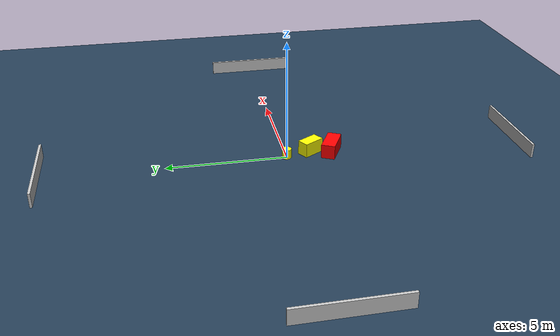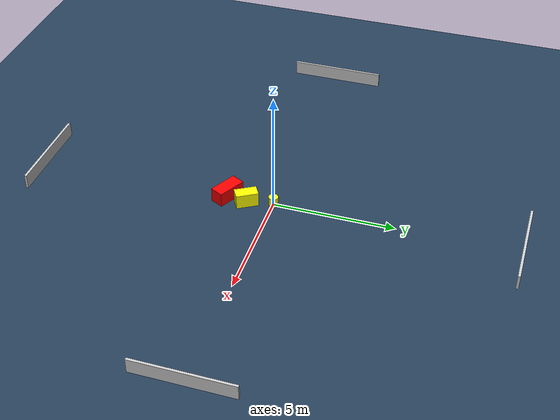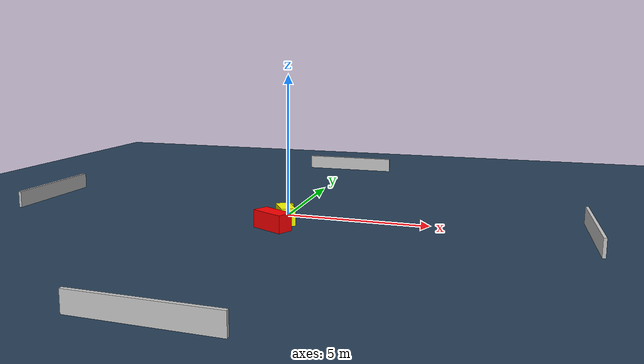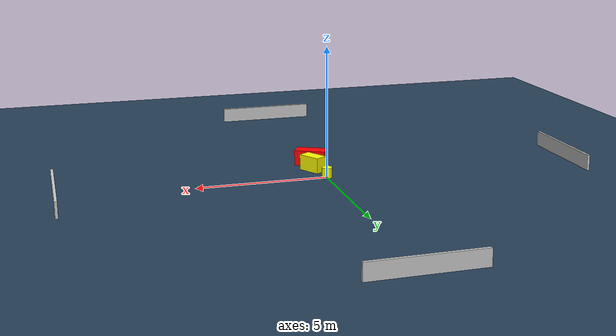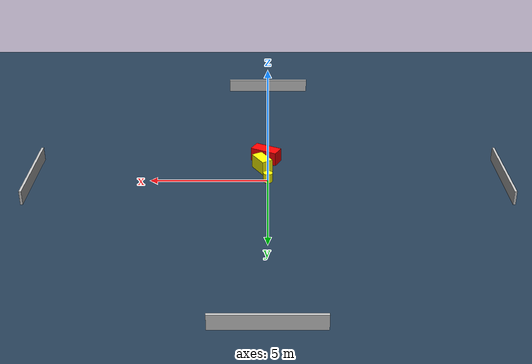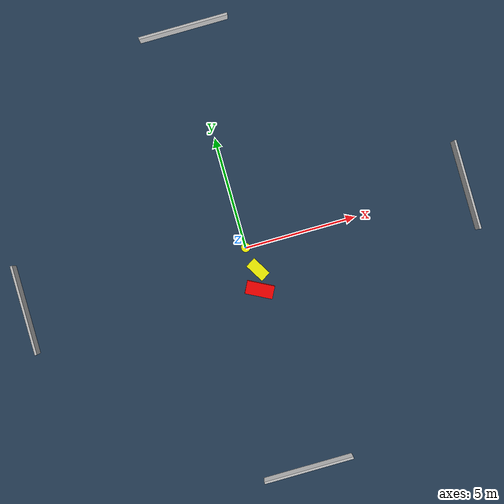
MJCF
<?xml version="1.0" ?>
<mujoco model="generated_environment">
  <option timestep="0.01" integrator="RK4" cone="elliptic"/>
  <default>
    <geom density="1"/>
  </default>
  <asset>
    <texture builtin="gradient" height="3072" name="skybox" rgb1="0.3 0.5 0.7" rgb2="0 0 0" type="skybox" width="512"/>
    <texture builtin="checker" height="300" name="groundplane" rgb1="0.2 0.3 0.4" rgb2="0.1 0.2 0.3" type="2d" width="300"/>
    <material name="groundplane" reflectance="0.2" texrepeat="5 5" texture="groundplane"/>
  </asset>
  <worldbody>
    <light dir="0 0 -1" directional="true" pos="0 0 1.5"/>
    <geom condim="3" friction="0.5 0.005 0.001" material="groundplane" name="floor" pos="0 0 0" size="0 0 0.05" type="plane"/>
    <body name="walls">
      <geom name="wall_1" condim="4" pos="-10.0 0.0 0.3" rgba="0.800000011920929 0.800000011920929 0.800000011920929 1.0" size="0.05 2.0 0.3" type="box"/>
      <geom name="wall_2" condim="4" pos="10.0 0.0 0.3" rgba="0.800000011920929 0.800000011920929 0.800000011920929 1.0" size="0.05 2.0 0.3" type="box"/>
      <geom name="wall_3" condim="4" pos="0.0 -10.0 0.3" rgba="0.800000011920929 0.800000011920929 0.800000011920929 1.0" size="2.0 0.05 0.3" type="box"/>
      <geom name="wall_4" condim="4" pos="0.0 10.0 0.3" rgba="0.800000011920929 0.800000011920929 0.800000011920929 1.0" size="2.0 0.05 0.3" type="box"/>
    </body>
    <body name="robot">
      <joint name="joint_x" type="slide" pos="0 0 0" axis="1 0 0"/>
      <joint name="joint_y" type="slide" pos="0 0 0" axis="0 1 0"/>
      <geom name="robot" type="cylinder" pos="0.0 0.0 0.2" size="0.2 0.2 0.0" mass="5.0" friction="1.0 0.005 0.0001" condim="4" rgba="1.0 1.0 0.0 1.0"/>
    </body>
    <body name="obstacle_1_movable">
      <geom name="obstacle_1_movable" condim="4" pos="0.24931951264110347 -1.0658756301147565 0.3" euler="0 0 120.96949779710926" friction="0.0 0.005 0.001" rgba="1.0 1.0 0.0 1.0" size="0.46016246594068266 0.24855846991520808 0.3" type="box" mass="0.1"/>
      <joint type="free"/>
    </body>
    <body name="obstacle_2_static">
      <geom name="obstacle_2_static" condim="4" pos="0.08364842867588244 -1.9285378298724454 0.3" euler="0 0 152.57981135710492" friction="0.0 0.005 0.001" rgba="1.0 0.0 0.0 1.0" size="0.6073503283038539 0.28759243245538607 0.3" type="box"/>
    </body>
  </worldbody>
  <actuator>
    <motor name="actuator_x" joint="joint_x" gear="1" ctrlrange="-1 1"/>
    <motor name="actuator_y" joint="joint_y" gear="1" ctrlrange="-1 1"/>
  </actuator>
</mujoco>
